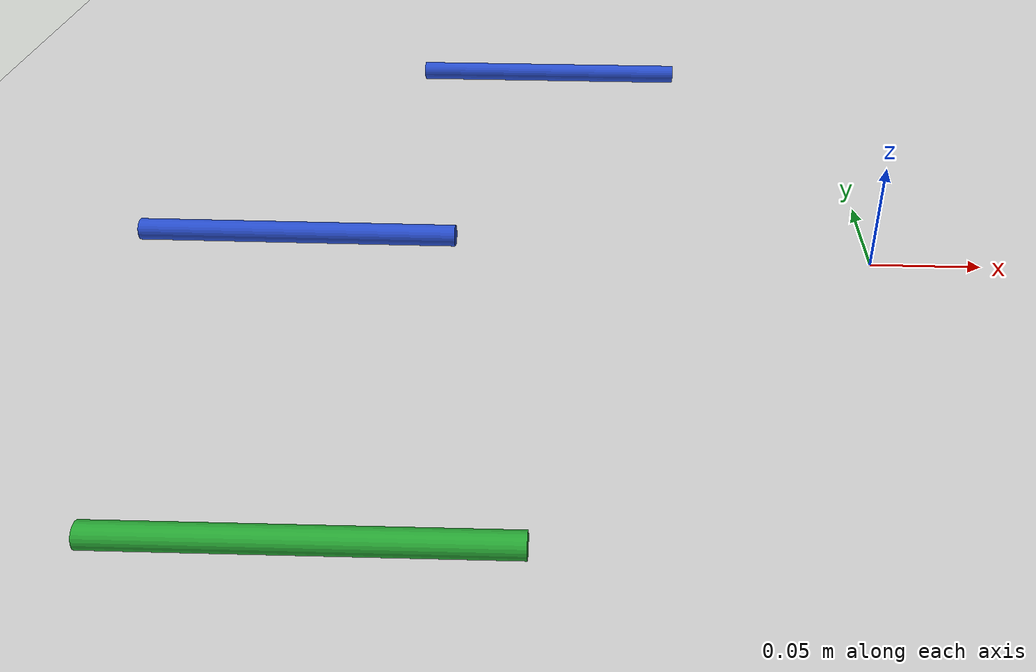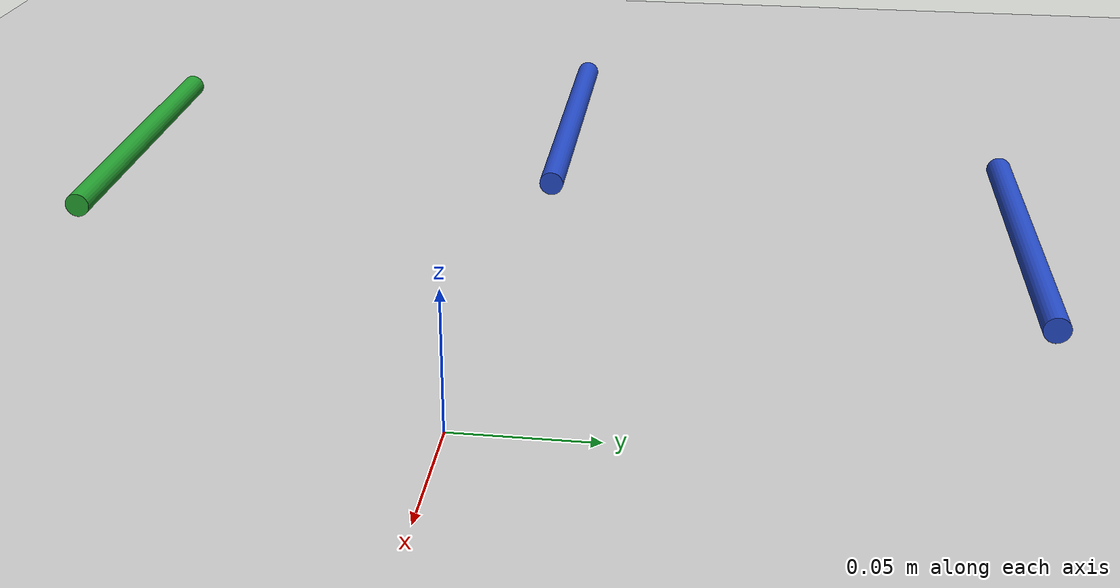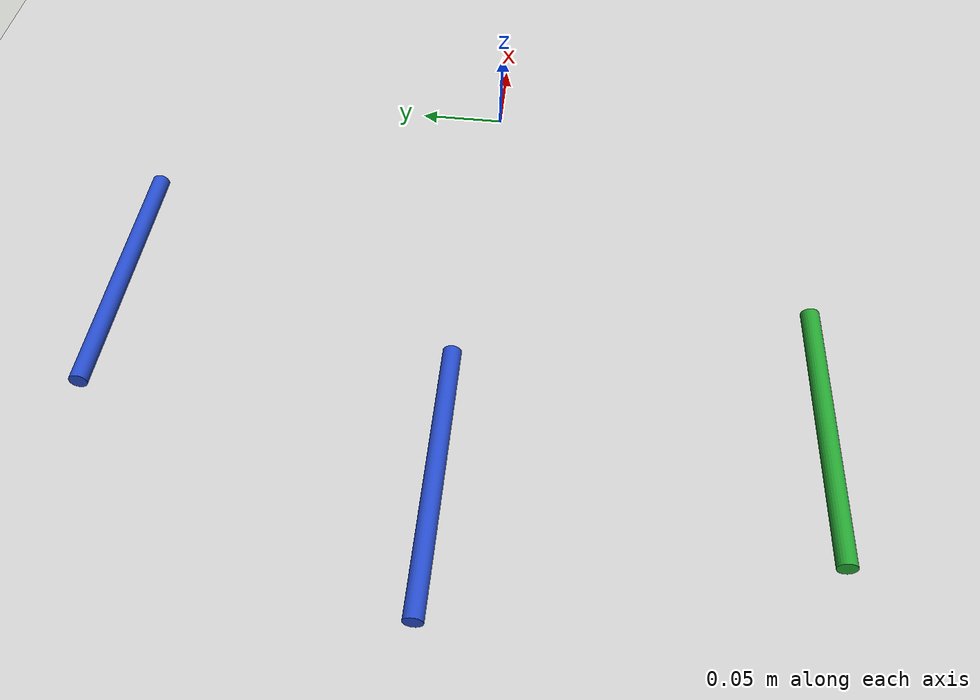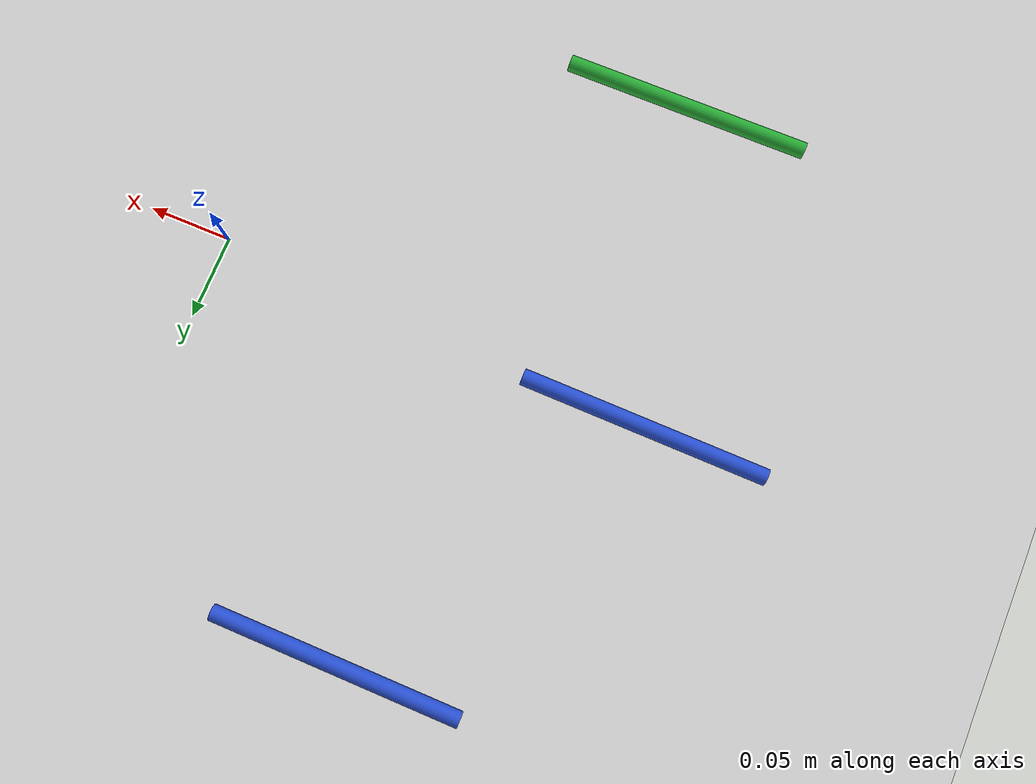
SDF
<sdf version="1.6">
 <world name="default">
  <light name="sun" type="directional">
   <pose>0 0 10 0 -0 0</pose>
   <diffuse>0.8 0.8 0.8 1</diffuse>
   <specular>0.1 0.1 0.1 1</specular>
   <attenuation>
    <range>1000</range>
    <constant>0.9</constant>
    <linear>0.01</linear>
    <quadratic>0.001</quadratic>
   </attenuation>
   <direction>-0.5 0.5 -1</direction>
  </light>
  <model name="ground_plane">
   <static>1</static>
   <link name="link">
    <collision name="collision">
     <geometry><plane><normal>0 0 1</normal><size>100 100</size></plane></geometry>
     <surface><friction><ode><mu>100</mu><mu2>50</mu2></ode></friction></surface>
    </collision>
    <visual name="visual">
     <cast_shadows>0</cast_shadows>
     <geometry><plane><normal>0 0 1</normal><size>100 100</size></plane></geometry>
     <material>
      <script><uri>file://media/materials/scripts/gazebo.material</uri><name>Gazebo/Grey</name></script>
     </material>
    </visual>
   </link>
  </model>
  <gravity>0 0 -9.8</gravity>
  <magnetic_field>6e-06 2.3e-05 -4.2e-05</magnetic_field>
  <atmosphere type="adiabatic"/>
  <physics name="default_physics" default="0" type="ode">
   <max_step_size>0.001</max_step_size>
   <real_time_factor>1</real_time_factor>
   <real_time_update_rate>1000</real_time_update_rate>
  </physics>
  <scene><ambient>0.4 0.4 0.4 1</ambient><background>0.7 0.7 0.7 1</background><shadows>1</shadows></scene>
  <spherical_coordinates>
   <surface_model>EARTH_WGS84</surface_model>
   <latitude_deg>0</latitude_deg>
   <longitude_deg>0</longitude_deg>
   <elevation>0</elevation>
   <heading_deg>0</heading_deg>
  </spherical_coordinates>
  <model name="pen_blue">
   <link name="link_0">
    <inertial>
     <mass>1</mass>
     <inertia><ixx>0.145833</ixx><ixy>0</ixy><ixz>0</ixz><iyy>0.145833</iyy><iyz>0</iyz><izz>0.125</izz></inertia>
    </inertial>
    <visual name="visual">
     <pose>0 0 0 1.5708 -0 0</pose>
     <geometry><cylinder><radius>0.005</radius><length>0.15</length></cylinder></geometry>
     <material>
      <lighting>1</lighting>
      <script><uri>file://media/materials/scripts/gazebo.material</uri><name>Gazebo/Blue</name></script>
      <ambient>0 0 1 1</ambient>
      <diffuse>0 0 1 1</diffuse>
      <specular>0.01 0.01 0.01 1</specular>
      <emissive>0 0 0 1</emissive>
      <shader type="vertex"><normal_map>__default__</normal_map></shader>
     </material>
    </visual>
    <collision name="collision">
     <pose>0 0 0 1.5708 -0 0</pose>
     <geometry><cylinder><radius>0.005</radius><length>0.15</length></cylinder></geometry>
     <surface>
      <friction>
       <ode><mu>1</mu><mu2>1</mu2><fdir1>0 0 0</fdir1><slip1>0</slip1><slip2>0</slip2></ode>
       <torsional>
        <coefficient>1</coefficient>
        <patch_radius>0</patch_radius>
        <surface_radius>0</surface_radius>
        <use_patch_radius>1</use_patch_radius>
        <ode><slip>0</slip></ode>
       </torsional>
      </friction>
      <bounce><restitution_coefficient>0</restitution_coefficient><threshold>1e+06</threshold></bounce>
      <contact>
       <collide_without_contact>0</collide_without_contact>
       <collide_without_contact_bitmask>1</collide_without_contact_bitmask>
       <collide_bitmask>1</collide_bitmask>
       <ode>
        <soft_cfm>0</soft_cfm>
        <soft_erp>0.2</soft_erp>
        <kp>1e+13</kp>
        <kd>1</kd>
        <max_vel>0.01</max_vel>
        <min_depth>0</min_depth>
       </ode>
       <bullet>
        <split_impulse>1</split_impulse>
        <split_impulse_penetration_threshold>-0.01</split_impulse_penetration_threshold>
        <soft_cfm>0</soft_cfm>
        <soft_erp>0.2</soft_erp>
        <kp>1e+13</kp>
        <kd>1</kd>
       </bullet>
      </contact>
     </surface>
    </collision>
   </link>
   <static>0</static>
   <pose>-0.158804 0.199951 0.005 3.14159 -1.57048 -1.57013</pose>
  </model>
  <model name="pen_green">
   <link name="link_0">
    <inertial>
     <mass>1</mass>
     <inertia><ixx>0.145833</ixx><ixy>0</ixy><ixz>0</ixz><iyy>0.145833</iyy><iyz>0</iyz><izz>0.125</izz></inertia>
    </inertial>
    <visual name="visual">
     <pose>0 0 0 1.5708 -0 0</pose>
     <geometry><cylinder><radius>0.005</radius><length>0.15</length></cylinder></geometry>
     <material>
      <lighting>1</lighting>
      <script><uri>file://media/materials/scripts/gazebo.material</uri><name>Gazebo/Green</name></script>
      <ambient>0 1 0 1</ambient>
      <diffuse>0 1 0 1</diffuse>
      <specular>0.01 0.01 0.01 1</specular>
      <emissive>0 0 0 1</emissive>
      <shader type="vertex"><normal_map>__default__</normal_map></shader>
     </material>
    </visual>
    <collision name="collision">
     <pose>0 0 0 1.5708 -0 0</pose>
     <geometry><cylinder><radius>0.005</radius><length>0.15</length></cylinder></geometry>
     <surface>
      <friction>
       <ode><mu>1</mu><mu2>1</mu2><fdir1>0 0 0</fdir1><slip1>0</slip1><slip2>0</slip2></ode>
       <torsional>
        <coefficient>1</coefficient>
        <patch_radius>0</patch_radius>
        <surface_radius>0</surface_radius>
        <use_patch_radius>1</use_patch_radius>
        <ode><slip>0</slip></ode>
       </torsional>
      </friction>
      <bounce><restitution_coefficient>0</restitution_coefficient><threshold>1e+06</threshold></bounce>
      <contact>
       <collide_without_contact>0</collide_without_contact>
       <collide_without_contact_bitmask>1</collide_without_contact_bitmask>
       <collide_bitmask>1</collide_bitmask>
       <ode>
        <soft_cfm>0</soft_cfm>
        <soft_erp>0.2</soft_erp>
        <kp>1e+13</kp>
        <kd>1</kd>
        <max_vel>0.01</max_vel>
        <min_depth>0</min_depth>
       </ode>
       <bullet>
        <split_impulse>1</split_impulse>
        <split_impulse_penetration_threshold>-0.01</split_impulse_penetration_threshold>
        <soft_cfm>0</soft_cfm>
        <soft_erp>0.2</soft_erp>
        <kp>1e+13</kp>
        <kd>1</kd>
       </bullet>
      </contact>
     </surface>
    </collision>
   </link>
   <static>0</static>
   <pose>-0.22085 -0.181769 0.005 -0.3093 -1.56214 -1.24989</pose>
  </model>
  <model name="pen_blue_0">
   <link name="link_0">
    <inertial>
     <mass>1</mass>
     <inertia><ixx>0.145833</ixx><ixy>0</ixy><ixz>0</ixz><iyy>0.145833</iyy><iyz>0</iyz><izz>0.125</izz></inertia>
    </inertial>
    <visual name="visual">
     <pose>0 0 0 1.5708 -0 0</pose>
     <geometry><cylinder><radius>0.005</radius><length>0.15</length></cylinder></geometry>
     <material>
      <lighting>1</lighting>
      <script><uri>file://media/materials/scripts/gazebo.material</uri><name>Gazebo/Blue</name></script>
      <ambient>0 0 1 1</ambient>
      <diffuse>0 0 1 1</diffuse>
      <specular>0.01 0.01 0.01 1</specular>
      <emissive>0 0 0 1</emissive>
      <shader type="vertex"><normal_map>__default__</normal_map></shader>
     </material>
    </visual>
    <collision name="collision">
     <pose>0 0 0 1.5708 -0 0</pose>
     <geometry><cylinder><radius>0.005</radius><length>0.15</length></cylinder></geometry>
     <surface>
      <friction>
       <ode><mu>1</mu><mu2>1</mu2><fdir1>0 0 0</fdir1><slip1>0</slip1><slip2>0</slip2></ode>
       <torsional>
        <coefficient>1</coefficient>
        <patch_radius>0</patch_radius>
        <surface_radius>0</surface_radius>
        <use_patch_radius>1</use_patch_radius>
        <ode><slip>0</slip></ode>
       </torsional>
      </friction>
      <bounce><restitution_coefficient>0</restitution_coefficient><threshold>1e+06</threshold></bounce>
      <contact>
       <collide_without_contact>0</collide_without_contact>
       <collide_without_contact_bitmask>1</collide_without_contact_bitmask>
       <collide_bitmask>1</collide_bitmask>
       <ode>
        <soft_cfm>0</soft_cfm>
        <soft_erp>0.2</soft_erp>
        <kp>1e+13</kp>
        <kd>1</kd>
        <max_vel>0.01</max_vel>
        <min_depth>0</min_depth>
       </ode>
       <bullet>
        <split_impulse>1</split_impulse>
        <split_impulse_penetration_threshold>-0.01</split_impulse_penetration_threshold>
        <soft_cfm>0</soft_cfm>
        <soft_erp>0.2</soft_erp>
        <kp>1e+13</kp>
        <kd>1</kd>
       </bullet>
      </contact>
     </surface>
    </collision>
   </link>
   <static>0</static>
   <pose>-0.267796 0.009753 0.005 -0.0004 -0.000708 1.56897</pose>
  </model>
 </world>
</sdf>
